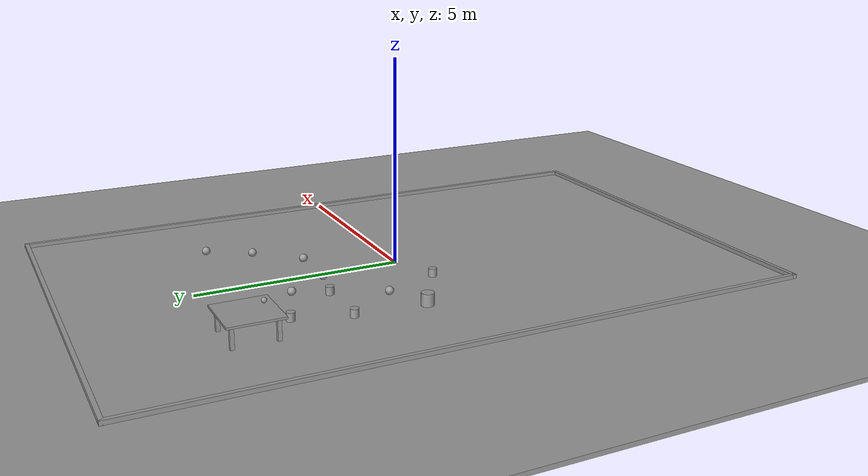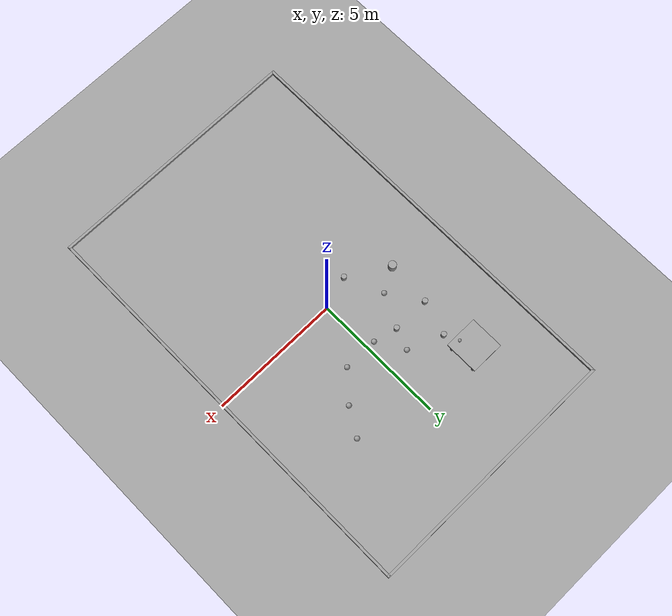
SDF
<sdf version='1.5'>
  <world name='room1'>
    <light name='sun' type='directional'>
      <cast_shadows>1</cast_shadows>
      <pose frame=''>0 0 10 0 -0 0</pose>
      <diffuse>0.8 0.8 0.8 1</diffuse>
      <specular>0.2 0.2 0.2 1</specular>
      <attenuation>
        <range>1000</range>
        <constant>0.9</constant>
        <linear>0.01</linear>
        <quadratic>0.001</quadratic>
      </attenuation>
      <direction>-0.5 0.1 -0.9</direction>
    </light>
    <physics name='default_physics' default='0' type='ode'>
      <max_step_size>0.001</max_step_size>
      <real_time_factor>1</real_time_factor>
      <real_time_update_rate>1000</real_time_update_rate>
      <gravity>0 0 -9.8</gravity>
      <magnetic_field>5.5645e-06 2.28758e-05 -4.23884e-05</magnetic_field>
    </physics>
    <scene>
      <ambient>0.4 0.4 0.4 1</ambient>
      <background>0.7 0.7 0.7 1</background>
      <shadows>1</shadows>
    </scene>
    <model name='floor'>
      <pose frame=''>0 0 -0.05 0 0 0</pose>
      <static>1</static>
      <link name='link'>
        <inertial>
          <mass>1</mass>
          <inertia>
            <ixx>1</ixx>
            <ixy>0</ixy>
            <ixz>0</ixz>
            <iyy>1</iyy>
            <iyz>0</iyz>
            <izz>1</izz>
          </inertia>
        </inertial>
        <collision name='collision'>
          <geometry>
            <box>
              <size>200 200 0.1</size>
            </box>
          </geometry>
          <max_contacts>10</max_contacts>
          <surface>
            <contact>
              <ode/>
            </contact>
            <bounce/>
            <friction>
              <ode/>
            </friction>
          </surface>
        </collision>
        <visual name='visual'>
          <geometry>
            <box>
              <size>200 200 0.1</size>
            </box>
          </geometry>
          <material>
            <script>
              <uri>file://media/materials/scripts/gazebo.material</uri>
              <name>Gazebo/Grey</name>
            </script>
          </material>
        </visual>
        <self_collide>0</self_collide>
        <kinematic>0</kinematic>
        <gravity>0</gravity>
      </link>
    </model>
    <model name='wall1'>
      <pose frame=''>-4.95 0 0.05 0 0 0</pose>
      <static>1</static>
      <link name='link'>
        <inertial>
          <mass>1</mass>
          <inertia>
            <ixx>1</ixx>
            <ixy>0</ixy>
            <ixz>0</ixz>
            <iyy>1</iyy>
            <iyz>0</iyz>
            <izz>1</izz>
          </inertia>
        </inertial>
        <collision name='collision'>
          <geometry>
            <box>
              <size>0.1 16 0.1</size>
            </box>
          </geometry>
          <max_contacts>10</max_contacts>
          <surface>
            <contact>
              <ode/>
            </contact>
            <bounce/>
            <friction>
              <ode/>
            </friction>
          </surface>
        </collision>
        <visual name='visual'>
          <geometry>
            <box>
              <size>0.1 16 0.1</size>
            </box>
          </geometry>
          <material>
            <script>
              <uri>file://media/materials/scripts/gazebo.material</uri>
              <name>Gazebo/Grey</name>
            </script>
          </material>
        </visual>
        <self_collide>0</self_collide>
        <kinematic>0</kinematic>
        <gravity>0</gravity>
      </link>
    </model>
    <model name='wall2'>
      <pose frame=''>0 7.95 0.05 0 0 0</pose>
      <static>1</static>
      <link name='link'>
        <inertial>
          <mass>1</mass>
          <inertia>
            <ixx>1</ixx>
            <ixy>0</ixy>
            <ixz>0</ixz>
            <iyy>1</iyy>
            <iyz>0</iyz>
            <izz>1</izz>
          </inertia>
        </inertial>
        <collision name='collision'>
          <geometry>
            <box>
              <size>10 0.1 0.1</size>
            </box>
          </geometry>
          <max_contacts>10</max_contacts>
          <surface>
            <contact>
              <ode/>
            </contact>
            <bounce/>
            <friction>
              <ode/>
            </friction>
          </surface>
        </collision>
        <visual name='visual'>
          <geometry>
            <box>
              <size>10 0.1 0.1</size>
            </box>
          </geometry>
          <material>
            <script>
              <uri>file://media/materials/scripts/gazebo.material</uri>
              <name>Gazebo/Grey</name>
            </script>
          </material>
        </visual>
        <self_collide>0</self_collide>
        <kinematic>0</kinematic>
        <gravity>0</gravity>
      </link>
    </model>
    <model name='wall3'>
      <pose frame=''>4.95 0 0.05 0 0 0</pose>
      <static>1</static>
      <link name='link'>
        <inertial>
          <mass>1</mass>
          <inertia>
            <ixx>1</ixx>
            <ixy>0</ixy>
            <ixz>0</ixz>
            <iyy>1</iyy>
            <iyz>0</iyz>
            <izz>1</izz>
          </inertia>
        </inertial>
        <collision name='collision'>
          <geometry>
            <box>
              <size>0.1 16 0.1</size>
            </box>
          </geometry>
          <max_contacts>10</max_contacts>
          <surface>
            <contact>
              <ode/>
            </contact>
            <bounce/>
            <friction>
              <ode/>
            </friction>
          </surface>
        </collision>
        <visual name='visual'>
          <geometry>
            <box>
              <size>0.1 16 0.1</size>
            </box>
          </geometry>
          <material>
            <script>
              <uri>file://media/materials/scripts/gazebo.material</uri>
              <name>Gazebo/Grey</name>
            </script>
          </material>
        </visual>
        <self_collide>0</self_collide>
        <kinematic>0</kinematic>
        <gravity>0</gravity>
      </link>
    </model>
    <model name='wall4'>
      <pose frame=''>0 -7.95 0.05 0 0 0</pose>
      <static>1</static>
      <link name='link'>
        <inertial>
          <mass>1</mass>
          <inertia>
            <ixx>1</ixx>
            <ixy>0</ixy>
            <ixz>0</ixz>
            <iyy>1</iyy>
            <iyz>0</iyz>
            <izz>1</izz>
          </inertia>
        </inertial>
        <collision name='collision'>
          <geometry>
            <box>
              <size>10 0.1 0.1</size>
            </box>
          </geometry>
          <max_contacts>10</max_contacts>
          <surface>
            <contact>
              <ode/>
            </contact>
            <bounce/>
            <friction>
              <ode/>
            </friction>
          </surface>
        </collision>
        <visual name='visual'>
          <geometry>
            <box>
              <size>10 0.1 0.1</size>
            </box>
          </geometry>
          <material>
            <script>
              <uri>file://media/materials/scripts/gazebo.material</uri>
              <name>Gazebo/Grey</name>
            </script>
          </material>
        </visual>
        <self_collide>0</self_collide>
        <kinematic>0</kinematic>
        <gravity>0</gravity>
      </link>
    </model>
    <model name='table_leg1'>
      <pose frame=''>-2.045 4.045 0.25 0 0 0</pose>
      <static>1</static>
      <link name='link'>
        <inertial>
          <mass>1</mass>
          <inertia>
            <ixx>1</ixx>
            <ixy>0</ixy>
            <ixz>0</ixz>
            <iyy>1</iyy>
            <iyz>0</iyz>
            <izz>1</izz>
          </inertia>
        </inertial>
        <collision name='collision'>
          <geometry>
            <box>
              <size>0.09 0.09 0.5</size>
            </box>
          </geometry>
          <max_contacts>10</max_contacts>
          <surface>
            <contact>
              <ode/>
            </contact>
            <bounce/>
            <friction>
              <ode/>
            </friction>
          </surface>
        </collision>
        <visual name='visual'>
          <geometry>
            <box>
              <size>0.09 0.09 0.5</size>
            </box>
          </geometry>
          <material>
            <script>
              <uri>file://media/materials/scripts/gazebo.material</uri>
              <name>Gazebo/Grey</name>
            </script>
          </material>
        </visual>
        <self_collide>0</self_collide>
        <kinematic>0</kinematic>
        <gravity>0</gravity>
      </link>
    </model>
    <model name='table_leg2'>
      <pose frame=''>-3.045 4.045 0.25 0 0 0</pose>
      <static>1</static>
      <link name='link'>
        <inertial>
          <mass>1</mass>
          <inertia>
            <ixx>1</ixx>
            <ixy>0</ixy>
            <ixz>0</ixz>
            <iyy>1</iyy>
            <iyz>0</iyz>
            <izz>1</izz>
          </inertia>
        </inertial>
        <collision name='collision'>
          <geometry>
            <box>
              <size>0.09 0.09 0.5</size>
            </box>
          </geometry>
          <max_contacts>10</max_contacts>
          <surface>
            <contact>
              <ode/>
            </contact>
            <bounce/>
            <friction>
              <ode/>
            </friction>
          </surface>
        </collision>
        <visual name='visual'>
          <geometry>
            <box>
              <size>0.09 0.09 0.5</size>
            </box>
          </geometry>
          <material>
            <script>
              <uri>file://media/materials/scripts/gazebo.material</uri>
              <name>Gazebo/Grey</name>
            </script>
          </material>
        </visual>
        <self_collide>0</self_collide>
        <kinematic>0</kinematic>
        <gravity>0</gravity>
      </link>
    </model>
    <model name='table_leg3'>
      <pose frame=''>-2.045 5.045 0.25 0 0 0</pose>
      <static>1</static>
      <link name='link'>
        <inertial>
          <mass>1</mass>
          <inertia>
            <ixx>1</ixx>
            <ixy>0</ixy>
            <ixz>0</ixz>
            <iyy>1</iyy>
            <iyz>0</iyz>
            <izz>1</izz>
          </inertia>
        </inertial>
        <collision name='collision'>
          <geometry>
            <box>
              <size>0.09 0.09 0.5</size>
            </box>
          </geometry>
          <max_contacts>10</max_contacts>
          <surface>
            <contact>
              <ode/>
            </contact>
            <bounce/>
            <friction>
              <ode/>
            </friction>
          </surface>
        </collision>
        <visual name='visual'>
          <geometry>
            <box>
              <size>0.09 0.09 0.5</size>
            </box>
          </geometry>
          <material>
            <script>
              <uri>file://media/materials/scripts/gazebo.material</uri>
              <name>Gazebo/Grey</name>
            </script>
          </material>
        </visual>
        <self_collide>0</self_collide>
        <kinematic>0</kinematic>
        <gravity>0</gravity>
      </link>
    </model>
    <model name='table_leg4'>
      <pose frame=''>-3.045 5.045 0.25 0 0 0</pose>
      <static>1</static>
      <link name='link'>
        <inertial>
          <mass>1</mass>
          <inertia>
            <ixx>1</ixx>
            <ixy>0</ixy>
            <ixz>0</ixz>
            <iyy>1</iyy>
            <iyz>0</iyz>
            <izz>1</izz>
          </inertia>
        </inertial>
        <collision name='collision'>
          <geometry>
            <box>
              <size>0.09 0.09 0.5</size>
            </box>
          </geometry>
          <max_contacts>10</max_contacts>
          <surface>
            <contact>
              <ode/>
            </contact>
            <bounce/>
            <friction>
              <ode/>
            </friction>
          </surface>
        </collision>
        <visual name='visual'>
          <geometry>
            <box>
              <size>0.09 0.09 0.5</size>
            </box>
          </geometry>
          <material>
            <script>
              <uri>file://media/materials/scripts/gazebo.material</uri>
              <name>Gazebo/Grey</name>
            </script>
          </material>
        </visual>
        <self_collide>0</self_collide>
        <kinematic>0</kinematic>
        <gravity>0</gravity>
      </link>
    </model>
    <model name='table_top'>
      <pose frame=''>-2.545 4.545 0.525 0 0 0</pose>
      <static>1</static>
      <link name='link'>
        <inertial>
          <mass>1</mass>
          <inertia>
            <ixx>1</ixx>
            <ixy>0</ixy>
            <ixz>0</ixz>
            <iyy>1</iyy>
            <iyz>0</iyz>
            <izz>1</izz>
          </inertia>
        </inertial>
        <collision name='collision'>
          <geometry>
            <box>
              <size>1.29 1.29 0.05</size>
            </box>
          </geometry>
          <max_contacts>10</max_contacts>
          <surface>
            <contact>
              <ode/>
            </contact>
            <bounce/>
            <friction>
              <ode/>
            </friction>
          </surface>
        </collision>
        <visual name='visual'>
          <geometry>
            <box>
              <size>1.29 1.29 0.05</size>
            </box>
          </geometry>
          <material>
            <script>
              <uri>file://media/materials/scripts/gazebo.material</uri>
              <name>Gazebo/Grey</name>
            </script>
          </material>
        </visual>
        <self_collide>0</self_collide>
        <kinematic>0</kinematic>
        <gravity>0</gravity>
      </link>
    </model>
    <model name='sphereFloor1'>
      <pose frame=''>-1.8 1 0.1 0 0 0</pose>
      <static>1</static>
      <link name='link'>
        <inertial>
          <mass>1</mass>
          <inertia>
            <ixx>1</ixx>
            <ixy>0</ixy>
            <ixz>0</ixz>
            <iyy>1</iyy>
            <iyz>0</iyz>
            <izz>1</izz>
          </inertia>
        </inertial>
        <collision name='collision'>
          <geometry>
            <sphere>
              <radius>0.1</radius>
            </sphere>
          </geometry>
          <max_contacts>10</max_contacts>
          <surface>
            <contact>
              <ode/>
            </contact>
            <bounce/>
            <friction>
              <ode/>
            </friction>
          </surface>
        </collision>
        <visual name='visual'>
          <geometry>
            <sphere>
              <radius>0.1</radius>
            </sphere>
          </geometry>
          <material>
            <script>
              <uri>file://media/materials/scripts/gazebo.material</uri>
              <name>Gazebo/Grey</name>
            </script>
          </material>
        </visual>
        <self_collide>0</self_collide>
        <kinematic>0</kinematic>
        <gravity>0</gravity>
      </link>
    </model>
    <model name='sphereFloor2'>
      <pose frame=''>-0.9 3 0.1 0 0 0</pose>
      <static>1</static>
      <link name='link'>
        <inertial>
          <mass>1</mass>
          <inertia>
            <ixx>1</ixx>
            <ixy>0</ixy>
            <ixz>0</ixz>
            <iyy>1</iyy>
            <iyz>0</iyz>
            <izz>1</izz>
          </inertia>
        </inertial>
        <collision name='collision'>
          <geometry>
            <sphere>
              <radius>0.1</radius>
            </sphere>
          </geometry>
          <max_contacts>10</max_contacts>
          <surface>
            <contact>
              <ode/>
            </contact>
            <bounce/>
            <friction>
              <ode/>
            </friction>
          </surface>
        </collision>
        <visual name='visual'>
          <geometry>
            <sphere>
              <radius>0.1</radius>
            </sphere>
          </geometry>
          <material>
            <script>
              <uri>file://media/materials/scripts/gazebo.material</uri>
              <name>Gazebo/Grey</name>
            </script>
          </material>
        </visual>
        <self_collide>0</self_collide>
        <kinematic>0</kinematic>
        <gravity>0</gravity>
      </link>
    </model>
    <model name='sphereFloor3'>
      <pose frame=''>-0.3 2 0.1 0 0 0</pose>
      <static>1</static>
      <link name='link'>
        <inertial>
          <mass>1</mass>
          <inertia>
            <ixx>1</ixx>
            <ixy>0</ixy>
            <ixz>0</ixz>
            <iyy>1</iyy>
            <iyz>0</iyz>
            <izz>1</izz>
          </inertia>
        </inertial>
        <collision name='collision'>
          <geometry>
            <sphere>
              <radius>0.1</radius>
            </sphere>
          </geometry>
          <max_contacts>10</max_contacts>
          <surface>
            <contact>
              <ode/>
            </contact>
            <bounce/>
            <friction>
              <ode/>
            </friction>
          </surface>
        </collision>
        <visual name='visual'>
          <geometry>
            <sphere>
              <radius>0.1</radius>
            </sphere>
          </geometry>
          <material>
            <script>
              <uri>file://media/materials/scripts/gazebo.material</uri>
              <name>Gazebo/Grey</name>
            </script>
          </material>
        </visual>
        <self_collide>0</self_collide>
        <kinematic>0</kinematic>
        <gravity>0</gravity>
      </link>
    </model>
    <model name='sphereFloor4'>
      <pose frame=''>1.9 3 0.1 0 0 0</pose>
      <static>1</static>
      <link name='link'>
        <inertial>
          <mass>1</mass>
          <inertia>
            <ixx>1</ixx>
            <ixy>0</ixy>
            <ixz>0</ixz>
            <iyy>1</iyy>
            <iyz>0</iyz>
            <izz>1</izz>
          </inertia>
        </inertial>
        <collision name='collision'>
          <geometry>
            <sphere>
              <radius>0.1</radius>
            </sphere>
          </geometry>
          <max_contacts>10</max_contacts>
          <surface>
            <contact>
              <ode/>
            </contact>
            <bounce/>
            <friction>
              <ode/>
            </friction>
          </surface>
        </collision>
        <visual name='visual'>
          <geometry>
            <sphere>
              <radius>0.1</radius>
            </sphere>
          </geometry>
          <material>
            <script>
              <uri>file://media/materials/scripts/gazebo.material</uri>
              <name>Gazebo/Grey</name>
            </script>
          </material>
        </visual>
        <self_collide>0</self_collide>
        <kinematic>0</kinematic>
        <gravity>0</gravity>
      </link>
    </model>
    <model name='sphereFloor5'>
      <pose frame=''>1 2 0.1 0 0 0</pose>
      <static>1</static>
      <link name='link'>
        <inertial>
          <mass>1</mass>
          <inertia>
            <ixx>1</ixx>
            <ixy>0</ixy>
            <ixz>0</ixz>
            <iyy>1</iyy>
            <iyz>0</iyz>
            <izz>1</izz>
          </inertia>
        </inertial>
        <collision name='collision'>
          <geometry>
            <sphere>
              <radius>0.1</radius>
            </sphere>
          </geometry>
          <max_contacts>10</max_contacts>
          <surface>
            <contact>
              <ode/>
            </contact>
            <bounce/>
            <friction>
              <ode/>
            </friction>
          </surface>
        </collision>
        <visual name='visual'>
          <geometry>
            <sphere>
              <radius>0.1</radius>
            </sphere>
          </geometry>
          <material>
            <script>
              <uri>file://media/materials/scripts/gazebo.material</uri>
              <name>Gazebo/Grey</name>
            </script>
          </material>
        </visual>
        <self_collide>0</self_collide>
        <kinematic>0</kinematic>
        <gravity>0</gravity>
      </link>
    </model>
    <model name='sphereFloor6'>
      <pose frame=''>2.5 4 0.1 0 0 0</pose>
      <static>1</static>
      <link name='link'>
        <inertial>
          <mass>1</mass>
          <inertia>
            <ixx>1</ixx>
            <ixy>0</ixy>
            <ixz>0</ixz>
            <iyy>1</iyy>
            <iyz>0</iyz>
            <izz>1</izz>
          </inertia>
        </inertial>
        <collision name='collision'>
          <geometry>
            <sphere>
              <radius>0.1</radius>
            </sphere>
          </geometry>
          <max_contacts>10</max_contacts>
          <surface>
            <contact>
              <ode/>
            </contact>
            <bounce/>
            <friction>
              <ode/>
            </friction>
          </surface>
        </collision>
        <visual name='visual'>
          <geometry>
            <sphere>
              <radius>0.1</radius>
            </sphere>
          </geometry>
          <material>
            <script>
              <uri>file://media/materials/scripts/gazebo.material</uri>
              <name>Gazebo/Grey</name>
            </script>
          </material>
        </visual>
        <self_collide>0</self_collide>
        <kinematic>0</kinematic>
        <gravity>0</gravity>
      </link>
    </model>
    <model name='sphereTable1'>
      <pose frame=''>-2.3 4.1 0.61 0 0 0</pose>
      <static>1</static>
      <link name='link'>
        <inertial>
          <mass>1</mass>
          <inertia>
            <ixx>1</ixx>
            <ixy>0</ixy>
            <ixz>0</ixz>
            <iyy>1</iyy>
            <iyz>0</iyz>
            <izz>1</izz>
          </inertia>
        </inertial>
        <collision name='collision'>
          <geometry>
            <sphere>
              <radius>0.06</radius>
            </sphere>
          </geometry>
          <max_contacts>10</max_contacts>
          <surface>
            <contact>
              <ode/>
            </contact>
            <bounce/>
            <friction>
              <ode/>
            </friction>
          </surface>
        </collision>
        <visual name='visual'>
          <geometry>
            <sphere>
              <radius>0.06</radius>
            </sphere>
          </geometry>
          <material>
            <script>
              <uri>file://media/materials/scripts/gazebo.material</uri>
              <name>Gazebo/Grey</name>
            </script>
          </material>
        </visual>
        <self_collide>0</self_collide>
        <kinematic>0</kinematic>
        <gravity>0</gravity>
      </link>
    </model>
    <model name='cylinderFloor1'>
      <pose frame=''>-2.7 0.5 0.15 0 0 0</pose>
      <static>1</static>
      <link name='link'>
        <inertial>
          <mass>1</mass>
          <inertia>
            <ixx>1</ixx>
            <ixy>0</ixy>
            <ixz>0</ixz>
            <iyy>1</iyy>
            <iyz>0</iyz>
            <izz>1</izz>
          </inertia>
        </inertial>
        <collision name='collision'>
          <geometry>
            <cylinder>
              <radius>0.15</radius>
              <length>0.3</length>
            </cylinder>
          </geometry>
          <max_contacts>10</max_contacts>
          <surface>
            <contact>
              <ode/>
            </contact>
            <bounce/>
            <friction>
              <ode/>
            </friction>
          </surface>
        </collision>
        <visual name='visual'>
          <geometry>
            <cylinder>
              <radius>0.15</radius>
              <length>0.3</length>
            </cylinder>
          </geometry>
          <material>
            <script>
              <uri>file://media/materials/scripts/gazebo.material</uri>
              <name>Gazebo/Grey</name>
            </script>
          </material>
        </visual>
        <self_collide>0</self_collide>
        <kinematic>0</kinematic>
        <gravity>0</gravity>
      </link>
    </model>
    <model name='cylinderFloor2'>
      <pose frame=''>-2.6 2.2 0.1 0 0 0</pose>
      <static>1</static>
      <link name='link'>
        <inertial>
          <mass>1</mass>
          <inertia>
            <ixx>1</ixx>
            <ixy>0</ixy>
            <ixz>0</ixz>
            <iyy>1</iyy>
            <iyz>0</iyz>
            <izz>1</izz>
          </inertia>
        </inertial>
        <collision name='collision'>
          <geometry>
            <cylinder>
              <radius>0.1</radius>
              <length>0.2</length>
            </cylinder>
          </geometry>
          <max_contacts>10</max_contacts>
          <surface>
            <contact>
              <ode/>
            </contact>
            <bounce/>
            <friction>
              <ode/>
            </friction>
          </surface>
        </collision>
        <visual name='visual'>
          <geometry>
            <cylinder>
              <radius>0.1</radius>
              <length>0.2</length>
            </cylinder>
          </geometry>
          <material>
            <script>
              <uri>file://media/materials/scripts/gazebo.material</uri>
              <name>Gazebo/Grey</name>
            </script>
          </material>
        </visual>
        <self_collide>0</self_collide>
        <kinematic>0</kinematic>
        <gravity>0</gravity>
      </link>
    </model>
    <model name='cylinderFloor3'>
      <pose frame=''>-1.2 -0.4 0.1 0 0 0</pose>
      <static>1</static>
      <link name='link'>
        <inertial>
          <mass>1</mass>
          <inertia>
            <ixx>1</ixx>
            <ixy>0</ixy>
            <ixz>0</ixz>
            <iyy>1</iyy>
            <iyz>0</iyz>
            <izz>1</izz>
          </inertia>
        </inertial>
        <collision name='collision'>
          <geometry>
            <cylinder>
              <radius>0.1</radius>
              <length>0.2</length>
            </cylinder>
          </geometry>
          <max_contacts>10</max_contacts>
          <surface>
            <contact>
              <ode/>
            </contact>
            <bounce/>
            <friction>
              <ode/>
            </friction>
          </surface>
        </collision>
        <visual name='visual'>
          <geometry>
            <cylinder>
              <radius>0.1</radius>
              <length>0.2</length>
            </cylinder>
          </geometry>
          <material>
            <script>
              <uri>file://media/materials/scripts/gazebo.material</uri>
              <name>Gazebo/Grey</name>
            </script>
          </material>
        </visual>
        <self_collide>0</self_collide>
        <kinematic>0</kinematic>
        <gravity>0</gravity>
      </link>
    </model>
    <model name='cylinderFloor4'>
      <pose frame=''>-1.2 2.2 0.1 0 0 0</pose>
      <static>1</static>
      <link name='link'>
        <inertial>
          <mass>1</mass>
          <inertia>
            <ixx>1</ixx>
            <ixy>0</ixy>
            <ixz>0</ixz>
            <iyy>1</iyy>
            <iyz>0</iyz>
            <izz>1</izz>
          </inertia>
        </inertial>
        <collision name='collision'>
          <geometry>
            <cylinder>
              <radius>0.1</radius>
              <length>0.2</length>
            </cylinder>
          </geometry>
          <max_contacts>10</max_contacts>
          <surface>
            <contact>
              <ode/>
            </contact>
            <bounce/>
            <friction>
              <ode/>
            </friction>
          </surface>
        </collision>
        <visual name='visual'>
          <geometry>
            <cylinder>
              <radius>0.1</radius>
              <length>0.2</length>
            </cylinder>
          </geometry>
          <material>
            <script>
              <uri>file://media/materials/scripts/gazebo.material</uri>
              <name>Gazebo/Grey</name>
            </script>
          </material>
        </visual>
        <self_collide>0</self_collide>
        <kinematic>0</kinematic>
        <gravity>0</gravity>
      </link>
    </model>
    <model name='cylinderFloor5'>
      <pose frame=''>-2.2 3.5 0.1 0 0 0</pose>
      <static>1</static>
      <link name='link'>
        <inertial>
          <mass>1</mass>
          <inertia>
            <ixx>1</ixx>
            <ixy>0</ixy>
            <ixz>0</ixz>
            <iyy>1</iyy>
            <iyz>0</iyz>
            <izz>1</izz>
          </inertia>
        </inertial>
        <collision name='collision'>
          <geometry>
            <cylinder>
              <radius>0.1</radius>
              <length>0.2</length>
            </cylinder>
          </geometry>
          <max_contacts>10</max_contacts>
          <surface>
            <contact>
              <ode/>
            </contact>
            <bounce/>
            <friction>
              <ode/>
            </friction>
          </surface>
        </collision>
        <visual name='visual'>
          <geometry>
            <cylinder>
              <radius>0.1</radius>
              <length>0.2</length>
            </cylinder>
          </geometry>
          <material>
            <script>
              <uri>file://media/materials/scripts/gazebo.material</uri>
              <name>Gazebo/Grey</name>
            </script>
          </material>
        </visual>
        <self_collide>0</self_collide>
        <kinematic>0</kinematic>
        <gravity>0</gravity>
      </link>
    </model>
  </world>
</sdf>
